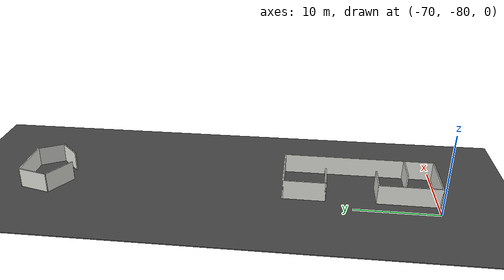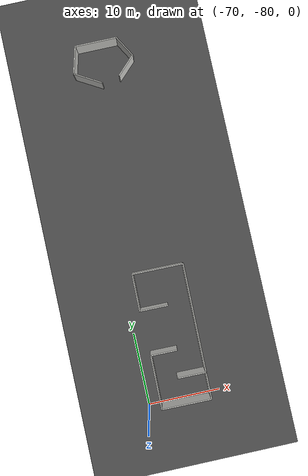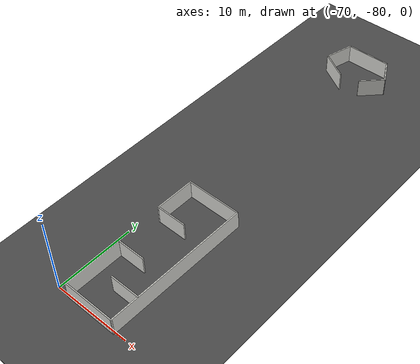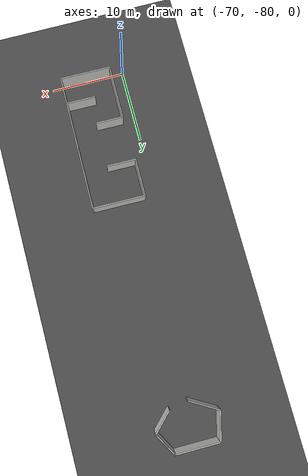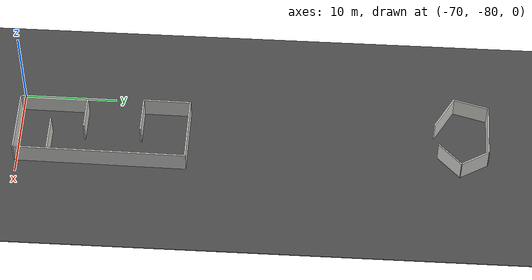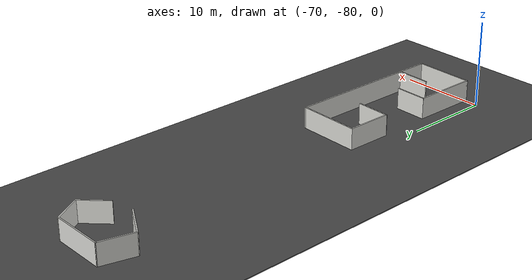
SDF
<sdf version="1.6">
 <world name="default">
  <model name="ground_plane">
   <static>1</static>
   <link name="link">
    <collision name="collision">
     <geometry><plane><normal>0 0 1</normal><size>200 200</size></plane></geometry>
     <surface><friction><ode><mu>100</mu><mu2>50</mu2></ode></friction></surface>
    </collision>
    <visual name="visual">
     <cast_shadows>0</cast_shadows>
     <geometry><plane><normal>0 0 1</normal><size>200 200</size></plane></geometry>
     <material>
      <script><uri>file://media/materials/scripts/gazebo.material</uri><name>Gazebo/Grey</name></script>
     </material>
    </visual>
   </link>
  </model>
  <model name="asphalt_plane">
   <static>1</static>
   <link name="link">
    <collision name="collision"><geometry><box><size>200 200 0.1</size></box></geometry></collision>
    <visual name="visual">
     <cast_shadows>0</cast_shadows>
     <geometry><box><size>200 200 0.1</size></box></geometry>
     <material>
      <script>
       <uri>model://asphalt_plane/materials/scripts</uri>
       <uri>model://asphalt_plane/materials/textures</uri>
       <name>vrc/asphalt</name>
      </script>
     </material>
    </visual>
   </link>
  </model>
  <model name="concrete_room2_0">
   <pose>-64.8929 -70.9047 0 0 -0 1.56011</pose>
   <link name="Wall_61">
    <collision name="Wall_61_Collision">
     <geometry><box><size>5.25 0.15 2.5</size></box></geometry>
     <pose>0 0 1.25 0 -0 0</pose>
    </collision>
    <visual name="Wall_61_Visual">
     <pose>0 0 1.25 0 -0 0</pose>
     <geometry><box><size>5.25 0.15 2.5</size></box></geometry>
     <material>
      <script><uri>file://media/materials/scripts/gazebo.material</uri><name>Gazebo/CeilingTiled</name></script>
      <ambient>1 1 1 1</ambient>
     </material>
     <meta><layer>0</layer></meta>
    </visual>
    <pose>6.75 3.55 0 0 -0 0</pose>
   </link>
   <link name="Wall_62">
    <collision name="Wall_62_Collision">
     <geometry><box><size>7.25 0.15 2.5</size></box></geometry>
     <pose>0 0 1.25 0 -0 0</pose>
    </collision>
    <visual name="Wall_62_Visual">
     <pose>0 0 1.25 0 -0 0</pose>
     <geometry><box><size>7.25 0.15 2.5</size></box></geometry>
     <material>
      <script><uri>file://media/materials/scripts/gazebo.material</uri><name>Gazebo/CeilingTiled</name></script>
      <ambient>1 1 1 1</ambient>
     </material>
     <meta><layer>0</layer></meta>
    </visual>
    <pose>9.3 0 0 0 0 -1.5708</pose>
   </link>
   <link name="Wall_63">
    <collision name="Wall_63_Collision">
     <geometry><box><size>18.75 0.15 2.5</size></box></geometry>
     <pose>0 0 1.25 0 -0 0</pose>
    </collision>
    <visual name="Wall_63_Visual">
     <pose>0 0 1.25 0 -0 0</pose>
     <geometry><box><size>18.75 0.15 2.5</size></box></geometry>
     <material>
      <script><uri>file://media/materials/scripts/gazebo.material</uri><name>Gazebo/CeilingTiled</name></script>
      <ambient>1 1 1 1</ambient>
     </material>
     <meta><layer>0</layer></meta>
    </visual>
    <pose>0 -3.55 0 0 -0 3.14159</pose>
   </link>
   <link name="Wall_64">
    <collision name="Wall_64_Collision">
     <geometry><box><size>7 0.15 2.5</size></box></geometry>
     <pose>0 0 1.25 0 -0 0</pose>
    </collision>
    <visual name="Wall_64_Visual">
     <pose>0 0 1.25 0 -0 0</pose>
     <geometry><box><size>7 0.15 2.5</size></box></geometry>
     <material>
      <script><uri>file://media/materials/scripts/gazebo.material</uri><name>Gazebo/CeilingTiled</name></script>
      <ambient>1 1 1 1</ambient>
     </material>
     <meta><layer>0</layer></meta>
    </visual>
    <pose>-9.3 -0.125 0 0 -0 1.5708</pose>
   </link>
   <link name="Wall_65">
    <collision name="Wall_65_Collision">
     <geometry><box><size>7.5 0.15 2.5</size></box></geometry>
     <pose>0 0 1.25 0 -0 0</pose>
    </collision>
    <visual name="Wall_65_Visual">
     <pose>0 0 1.25 0 -0 0</pose>
     <geometry><box><size>7.5 0.15 2.5</size></box></geometry>
     <material>
      <script><uri>file://media/materials/scripts/gazebo.material</uri><name>Gazebo/CeilingTiled</name></script>
      <ambient>1 1 1 1</ambient>
     </material>
     <meta><layer>0</layer></meta>
    </visual>
    <pose>-5.625 3.3 0 0 -0 0</pose>
   </link>
   <link name="Wall_66">
    <collision name="Wall_66_Collision">
     <geometry><box><size>3.75 0.15 2.5</size></box></geometry>
     <pose>0 0 1.25 0 -0 0</pose>
    </collision>
    <visual name="Wall_66_Visual">
     <pose>0 0 1.25 0 -0 0</pose>
     <geometry><box><size>3.75 0.15 2.5</size></box></geometry>
     <material>
      <script><uri>file://media/materials/scripts/gazebo.material</uri><name>Gazebo/CeilingTiled</name></script>
      <ambient>1 1 1 1</ambient>
     </material>
     <meta><layer>0</layer></meta>
    </visual>
    <pose>-1.95 1.5 0 0 0 -1.5708</pose>
   </link>
   <link name="Wall_70">
    <collision name="Wall_70_Collision">
     <geometry><box><size>4 0.15 2.5</size></box></geometry>
     <pose>0 0 1.25 0 -0 0</pose>
    </collision>
    <visual name="Wall_70_Visual">
     <pose>0 0 1.25 0 -0 0</pose>
     <geometry><box><size>4 0.15 2.5</size></box></geometry>
     <material>
      <script><uri>file://media/materials/scripts/gazebo.material</uri><name>Gazebo/CeilingTiled</name></script>
      <ambient>1 1 1 1</ambient>
     </material>
     <meta><layer>0</layer></meta>
    </visual>
    <pose>4.2 1.625 0 0 0 -1.5708</pose>
   </link>
   <link name="Wall_72">
    <collision name="Wall_72_Collision">
     <geometry><box><size>4 0.15 2.5</size></box></geometry>
     <pose>0 0 1.25 0 -0 0</pose>
    </collision>
    <visual name="Wall_72_Visual">
     <pose>0 0 1.25 0 -0 0</pose>
     <geometry><box><size>4 0.15 2.5</size></box></geometry>
     <material>
      <script><uri>file://media/materials/scripts/gazebo.material</uri><name>Gazebo/CeilingTiled</name></script>
      <ambient>1 1 1 1</ambient>
     </material>
     <meta><layer>0</layer></meta>
    </visual>
    <pose>-5.65005 -1.59593 0 0 -0 1.5708</pose>
   </link>
   <static>1</static>
  </model>
  <model name="concrete_room">
   <pose>-66.0722 -31.9823 0 0 -0 0</pose>
   <link name="Wall_54">
    <collision name="Wall_54_Collision">
     <geometry><box><size>4.25 0.15 2.5</size></box></geometry>
     <pose>0 0 1.25 0 -0 0</pose>
    </collision>
    <visual name="Wall_54_Visual">
     <pose>0 0 1.25 0 -0 0</pose>
     <geometry><box><size>4.25 0.15 2.5</size></box></geometry>
     <material>
      <script><uri>file://media/materials/scripts/gazebo.material</uri><name>Gazebo/CeilingTiled</name></script>
      <ambient>1 1 1 1</ambient>
     </material>
     <meta><layer>0</layer></meta>
    </visual>
    <pose>-2.48718 -1.85941 0 0 -0 2.61799</pose>
   </link>
   <link name="Wall_55">
    <collision name="Wall_55_Collision">
     <geometry><box><size>4 0.15 2.5</size></box></geometry>
     <pose>0 0 1.25 0 -0 0</pose>
    </collision>
    <visual name="Wall_55_Visual">
     <pose>0 0 1.25 0 -0 0</pose>
     <geometry><box><size>4 0.15 2.5</size></box></geometry>
     <material>
      <script><uri>file://media/materials/scripts/gazebo.material</uri><name>Gazebo/CeilingTiled</name></script>
      <ambient>1 1 1 1</ambient>
     </material>
     <meta><layer>0</layer></meta>
    </visual>
    <pose>-3.76431 1.025 0 0 -0 1.309</pose>
   </link>
   <link name="Wall_56">
    <collision name="Wall_56_Collision">
     <geometry><box><size>6 0.15 2.5</size></box></geometry>
     <pose>0 0 1.25 0 -0 0</pose>
    </collision>
    <visual name="Wall_56_Visual">
     <pose>0 0 1.25 0 -0 0</pose>
     <geometry><box><size>6 0.15 2.5</size></box></geometry>
     <material>
      <script><uri>file://media/materials/scripts/gazebo.material</uri><name>Gazebo/CeilingTiled</name></script>
      <ambient>1 1 1 1</ambient>
     </material>
     <meta><layer>0</layer></meta>
    </visual>
    <pose>-0.34108 2.88441 0 0 -0 0</pose>
   </link>
   <link name="Wall_57">
    <collision name="Wall_57_Collision">
     <geometry><box><size>3.5 0.15 2.5</size></box></geometry>
     <pose>0 0 1.25 0 -0 0</pose>
    </collision>
    <visual name="Wall_57_Visual">
     <pose>0 0 1.25 0 -0 0</pose>
     <geometry><box><size>3.5 0.15 2.5</size></box></geometry>
     <material>
      <script><uri>file://media/materials/scripts/gazebo.material</uri><name>Gazebo/CeilingTiled</name></script>
      <ambient>1 1 1 1</ambient>
     </material>
     <meta><layer>0</layer></meta>
    </visual>
    <pose>3.42142 1.43382 0 0 0 -1.0472</pose>
   </link>
   <link name="Wall_58">
    <collision name="Wall_58_Collision">
     <geometry><box><size>3.5 0.15 2.5</size></box></geometry>
     <pose>0 0 1.25 0 -0 0</pose>
    </collision>
    <visual name="Wall_58_Visual">
     <pose>0 0 1.25 0 -0 0</pose>
     <geometry><box><size>3.5 0.15 2.5</size></box></geometry>
     <material>
      <script><uri>file://media/materials/scripts/gazebo.material</uri><name>Gazebo/CeilingTiled</name></script>
      <ambient>1 1 1 1</ambient>
     </material>
     <meta><layer>0</layer></meta>
    </visual>
    <pose>3.07452 -1.20118 0 0 0 -2.35619</pose>
   </link>
   <static>1</static>
  </model>
 </world>
</sdf>
